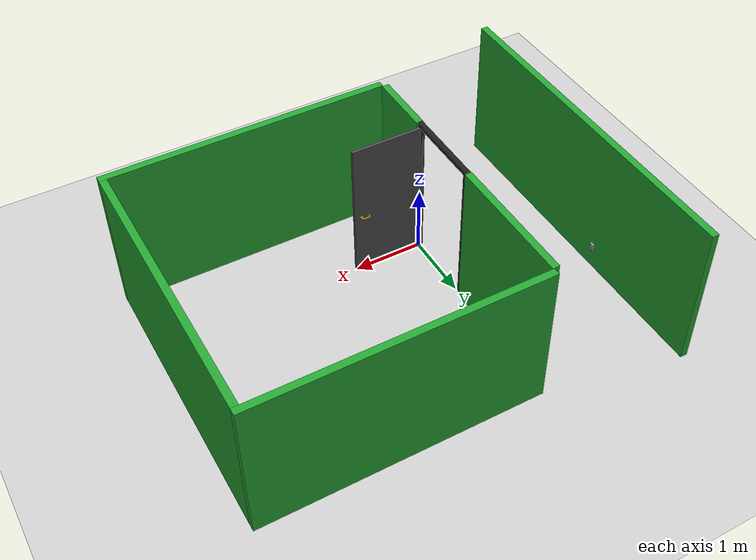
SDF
<!--environment for testing-->
<!--door: mass-30kg, width-1.05m, thickness-4.5cm, height-2.1m, color-dark grey-->
<!--door hinge: spring reference-3, spring stiffness-1-->
<!--door frame: color-black-->
<!--door handle: color-gold-->
<!--wall: color-green-->
<!--lighting: one light in room-constant=0.2-->

<sdf version='1.6'>
  <world name='default'>
    <include>
      <uri>model://ground_plane</uri>
    </include>
    <model name="hinged_door">
      <link name="frame">
        <pose>0.0 0 0 0 0 0</pose>
        <collision name="collision">
          <pose>0 0 0 0 0 0</pose>
          <geometry>
            <mesh>
              <uri>file://media/materials/obj/frame_105.obj</uri>
              <scale>0.01 0.01 0.01</scale>
            </mesh>
          </geometry>
        </collision>
        <visual name="visual">
          <pose>0 0 0 0 0 0</pose>
          <geometry>
            <mesh>
              <uri>file://media/materials/obj/frame_105.obj</uri>
              <scale>0.01 0.01 0.01</scale>
            </mesh>
          </geometry>
          <material>
           <script>
            <uri>file://media/materials/scripts/Gazebo.material</uri>
            <name>Gazebo/Black</name>
           </script>
          </material>
        </visual>
      </link>
      <link name="door">
        <pose>-0.045 0 0 0 0 0</pose>
        <inertial>
          <mass>30</mass>
          <pose>0 0 0 0 0 0</pose>
          <inertia>
            <ixx>14.7</ixx>
            <ixy>-0.000861</ixy>
            <ixz>0</ixz>
            <iyy>17.4</iyy>
            <iyz>0</iyz>
            <izz>2.70675</izz>
          </inertia>
        </inertial>
        <collision name="collision">
          <pose>0 0 0 0 0 0</pose>
          <geometry>
            <mesh>
              <uri>file://media/materials/obj/door_105.obj</uri>
              <scale>0.01 0.01 0.01</scale>
            </mesh>
          </geometry>
        </collision>
        <visual name="visual">
          <pose>0 0 0 0 0 0</pose>
          <geometry>
            <mesh>
              <uri>file://media/materials/obj/door_105.obj</uri>
              <scale>0.01 0.01 0.01</scale>
            </mesh>
          </geometry>
          <material>
           <script>
            <uri>file://media/materials/scripts/Gazebo.material</uri>
            <name>Gazebo/DarkGrey</name>
           </script>
          </material>
        </visual>
      </link>
      <link name="handle">
        <pose>0.9 -0.045 0.95 0 0 0</pose>
        <inertial>
          <mass>1</mass>
          <pose>0 0 0 0 0 0</pose>
          <inertia>
            <ixx>1</ixx>
            <ixy>0</ixy>
            <ixz>0</ixz>
            <iyy>1</iyy>
            <iyz>0</iyz>
            <izz>1</izz>
          </inertia>
        </inertial>
        <collision name="collision_1">
          <pose>0 0 0 0 0 -1.57</pose>
          <geometry>
            <mesh>
              <uri>file://media/materials/obj/handle.obj</uri>
              <scale>0.01 0.01 0.01</scale>
            </mesh>
          </geometry>
        </collision>
        <collision name="collision_2">
          <pose>0 0.045 0 3.14 0 1.57</pose>
          <geometry>
            <mesh>
              <uri>file://media/materials/obj/handle.obj</uri>
              <scale>0.01 0.01 0.01</scale>
            </mesh>
          </geometry>
        </collision>
        <visual name="visual_1">
          <pose>0 0 0 0 0 -1.57</pose>
          <geometry>
            <mesh>
              <uri>file://media/materials/obj/handle.obj</uri>
              <scale>0.01 0.01 0.01</scale>
            </mesh>
          </geometry>
          <material>
          <script>
            <uri>file://media/materials/scripts/Gazebo.material</uri>
            <name>Gazebo/Gold</name>
          </script>
          </material>
        </visual>
        <visual name="visual_2">
          <pose>0 0.045 0 3.14 0 1.57</pose>
          <geometry>
            <mesh>
              <uri>file://media/materials/obj/handle.obj</uri>
              <scale>0.01 0.01 0.01</scale>
            </mesh>
          </geometry>
          <material>
          <script>
            <uri>file://media/materials/scripts/Gazebo.material</uri>
            <name>Gazebo/Gold</name>
          </script>
          </material>
        </visual>
      </link>
      <joint name="door_handle" type="revolute">
        <parent>door</parent>
        <child>handle</child>
        <pose>0 0 0 0 0 0</pose>
        <axis>
          <xyz>0 1 0</xyz>
          <limit>
            <lower>-1</lower>
            <upper>0</upper>
            <effort>0</effort>
            <stiffness>0</stiffness>
            <dissipation>0</dissipation>
          </limit>
          <dynamics>
            <spring_reference>0</spring_reference>
            <spring_stiffness>1</spring_stiffness>
            <damping>0</damping>
            <friction>0</friction>
          </dynamics>
          <use_parent_model_frame>true</use_parent_model_frame>
        </axis>
      </joint>
      <joint name="hinge" type="revolute">
        <parent>frame</parent>
        <child>door</child>
        <pose>0 0 1.05 0 0 0</pose>
        <axis>
          <xyz>0 0 1</xyz>
          <limit>
            <lower>0</lower>
            <upper>1.47</upper>
            <effort>0</effort>
            <stiffness>0</stiffness>
            <dissipation>0</dissipation>
          </limit>
          <dynamics>
            <spring_reference>3</spring_reference>
            <spring_stiffness>1</spring_stiffness>
            <damping>0</damping>
            <friction>0</friction>
          </dynamics>
          <use_parent_model_frame>true</use_parent_model_frame>
        </axis>
      </joint>
      <joint name="world_joint" type="fixed">
        <child>frame</child>
        <parent>world</parent>
      </joint>
    </model>
    <model name="walls">
      <static>true</static>
      <link name="wall_1">
        <collision name="wall_1_collision">
          <pose>-0.03 2.055 1.08 0 0 0</pose>
          <geometry>
            <box>
              <size>0.1 1.88 2.16</size>
            </box>
          </geometry>
        </collision>
        <visual name="wall_1_visual">
          <pose>-0.03 2.055 1.08 0 0 0</pose>
          <geometry>
            <box>
              <size>0.1 1.88 2.16</size>
            </box>
          </geometry>
          <material>
            <script>
              <uri>file://media/materials/scripts/Gazebo.material</uri>
              <name>Gazebo/Green</name>
            </script>
          </material>
        </visual>
      </link>
      <link name="wall_2">
        <collision name="wall_2_collision">
          <pose>-0.03 -0.53 1.08 0 0 0</pose>
          <geometry>
            <box>
              <size>0.1 0.93 2.16</size>
            </box>
          </geometry>
        </collision>
        <visual name="wall_2_visual">
          <pose>-0.03 -0.53 1.08 0 0 0</pose>
          <geometry>
            <box>
              <size>0.1 0.93 2.16</size>
            </box>
          </geometry>
          <material>
            <script>
              <uri>file://media/materials/scripts/Gazebo.material</uri>
              <name>Gazebo/Green</name>
            </script>
          </material>
        </visual>
      </link>
      <link name="wall_3">
        <collision name="wall_3_collision">
          <pose>2 3.05 1.08 0 0 0</pose>
          <geometry>
            <box>
              <size>4 0.1 2.16</size>
            </box>
          </geometry>
        </collision>
        <visual name="wall_3_visual">
          <pose>2 3.05 1.08 0 0 0</pose>
          <geometry>
            <box>
              <size>4 0.1 2.16</size>
            </box>
          </geometry>
          <material>
            <script>
              <uri>file://media/materials/scripts/Gazebo.material</uri>
              <name>Gazebo/Green</name>
            </script>
          </material>
        </visual>
      </link>
      <link name="wall_4">
        <collision name="wall_4_collision">
          <pose>2 -1.05 1.08 0 0 0</pose>
          <geometry>
            <box>
              <size>4.0 0.1 2.16</size>
            </box>
          </geometry>
        </collision>
        <visual name="wall_4_visual">
          <pose>2 -1.05 1.08 0 0 0</pose>
          <geometry>
            <box>
              <size>4.0 0.1 2.16</size>
            </box>
          </geometry>
          <material>
            <script>
              <uri>file://media/materials/scripts/Gazebo.material</uri>
              <name>Gazebo/Green</name>
            </script>
          </material>
        </visual>
      </link>
      <link name="wall_5">
        <collision name="wall_5_collision">
          <pose>3.95 1 1.08 0 0 0</pose>
          <geometry>
            <box>
              <size>0.1 4 2.16</size>
            </box>
          </geometry>
        </collision>
        <visual name="wall_5_visual">
          <pose>3.95 1 1.08 0 0 0</pose>
          <geometry>
            <box>
              <size>0.1 4 2.16</size>
            </box>
          </geometry>
          <material>
            <script>
              <uri>file://media/materials/scripts/Gazebo.material</uri>
              <name>Gazebo/Green</name>
            </script>
          </material>
        </visual>
      </link>
      <link name="wall_6">
        <collision name="wall_6_collision">
          <pose>-1.95 1.0 1.08 0 0 0</pose>
          <geometry>
            <box>
              <size>0.1 5 2.16</size>
            </box>
          </geometry>
        </collision>
        <visual name="wall_6_visual">
          <pose>-1.95 1 1.08 0 0 0</pose>
          <geometry>
            <box>
              <size>0.1 5 2.16</size>
            </box>
          </geometry>
          <material>
            <script>
              <uri>file://media/materials/scripts/Gazebo.material</uri>
              <name>Gazebo/Green</name>
            </script>
          </material>
        </visual>
      </link>
    </model>
    <model name="socket">
      <static>true</static>
      <link name="socket_1">
        <visual name="visual_socket_1">
          <pose>-1.88 1.5 0.4 1.57 0 1.57</pose>
          <geometry>
            <mesh>
              <uri>file://media/materials/obj/socket.obj</uri>
            </mesh>
          </geometry>
          <material>
            <script>
              <uri>file://media/materials/scripts/Gazebo.material</uri>
              <name>Gazebo/Gray</name>
            </script>
          </material>
        </visual>
        <collision name="collision_socket_1">
          <pose>-1.88 1.5 0.4 1.57 0 1.57</pose>
          <geometry>
            <mesh>
              <uri>file://media/materials/obj/socket.obj</uri>
            </mesh>
          </geometry>
        </collision>
      </link>
      <link name="socket_2">
        <visual name="visual_socket_2">
          <pose>1.0 2.98 0.4 1.57 0 0</pose>
          <geometry>
            <mesh>
              <uri>file://media/materials/obj/socket.obj</uri>
            </mesh>
          </geometry>
          <material>
            <script>
              <uri>file://media/materials/scripts/Gazebo.material</uri>
              <name>Gazebo/Gray</name>
            </script>
          </material>
        </visual>
        <collision name="collision_socket_2">
          <pose>1.0 2.98 0.4 1.57 0 0</pose>
          <geometry>
            <mesh>
              <uri>file://media/materials/obj/socket.obj</uri>
            </mesh>
          </geometry>
        </collision>
      </link>
    </model>
    <light name="light0" type="point">
      <cast_shadows>0</cast_shadows>
      <diffuse>1 1 1 1</diffuse>
      <specular>0.1 0.1 0.1 1</specular>
      <pose>2 1 3 0 0 0</pose>
      <direction>0 0 -1</direction>
      <attenuation>
        <range>10</range>
        <linear>0</linear>
        <constant>0.2</constant>
      </attenuation>
    </light>

    <physics type="ode">
      <max_step_size>0.001</max_step_size>
      <real_time_factor>1</real_time_factor>
      <real_time_update_rate>1000</real_time_update_rate>
      <ode>
        <solver>
          <type>quick</type>
          <iters>1000</iters>
          <sor>1.3</sor>
        </solver>
        <constraints>
          <cfm>0</cfm>
          <erp>0.2</erp>
          <contact_max_correcting_vel>100</contact_max_correcting_vel>
          <contact_surface_layer>0.001</contact_surface_layer>
        </constraints>
      </ode>
    </physics>

    <gui fullscreen='0'>
      <camera name='user_camera'>
        <pose frame=''>1.43231 2.17046 6.28176 0 1.2058 -2.42384</pose>
        <view_controller>orbit</view_controller>
        <projection_type>perspective</projection_type>
      </camera>
    </gui>
  </world>
</sdf>
